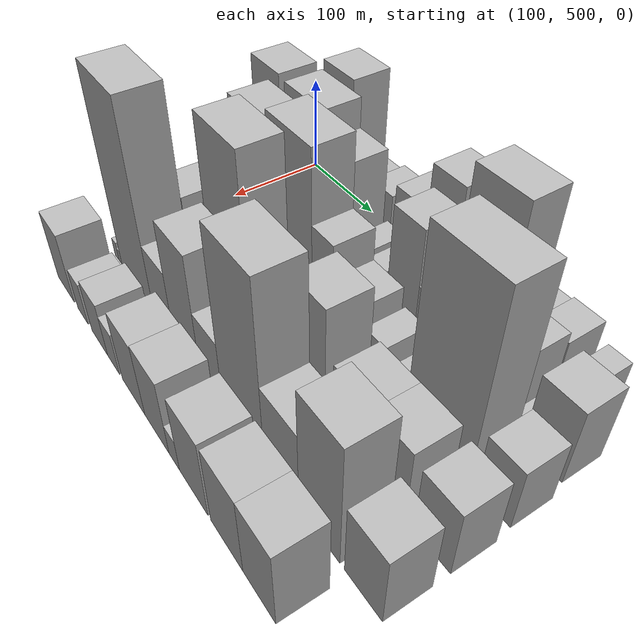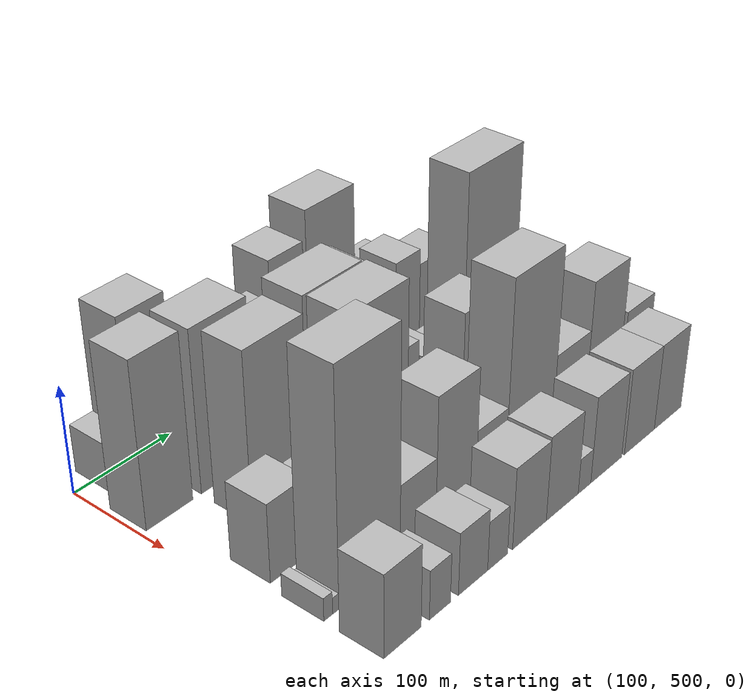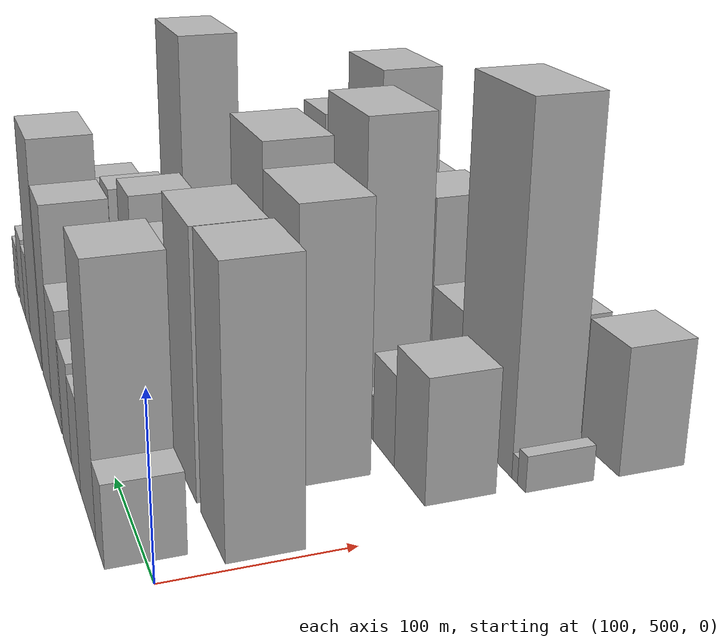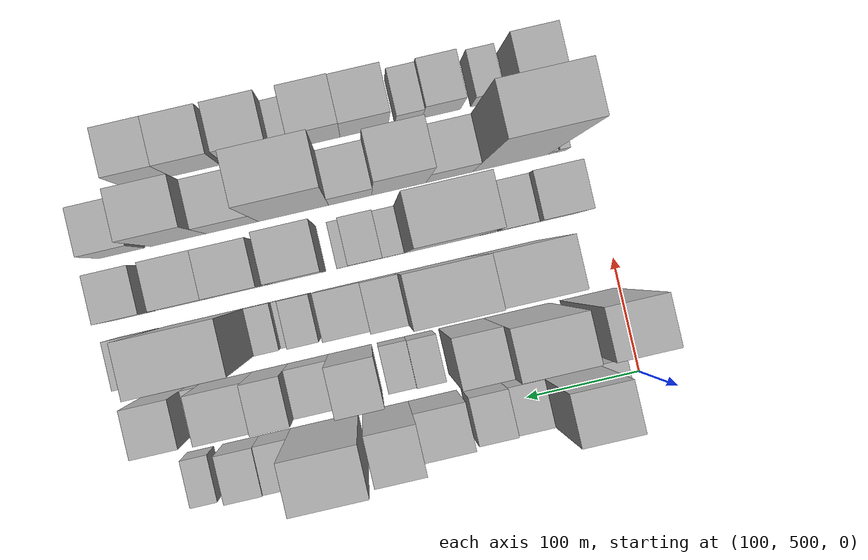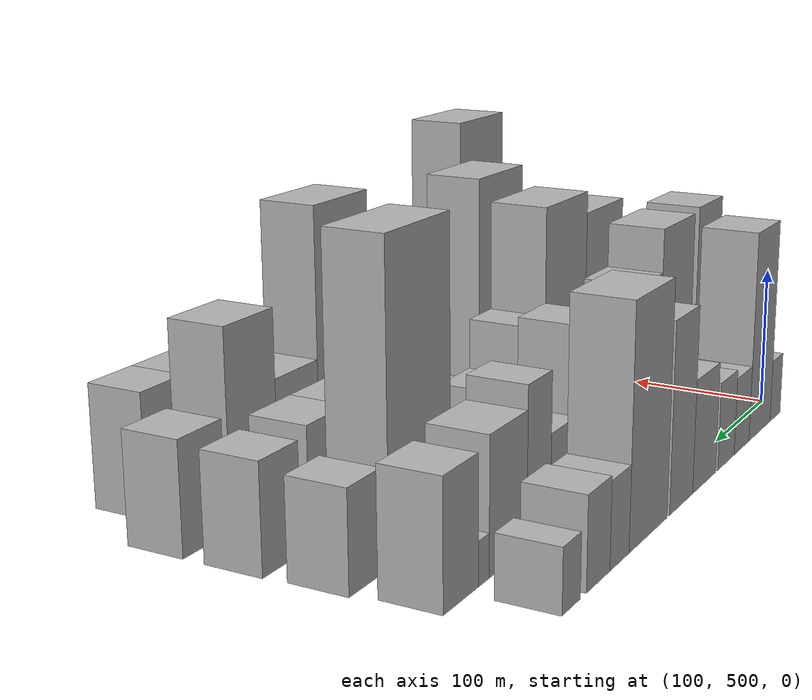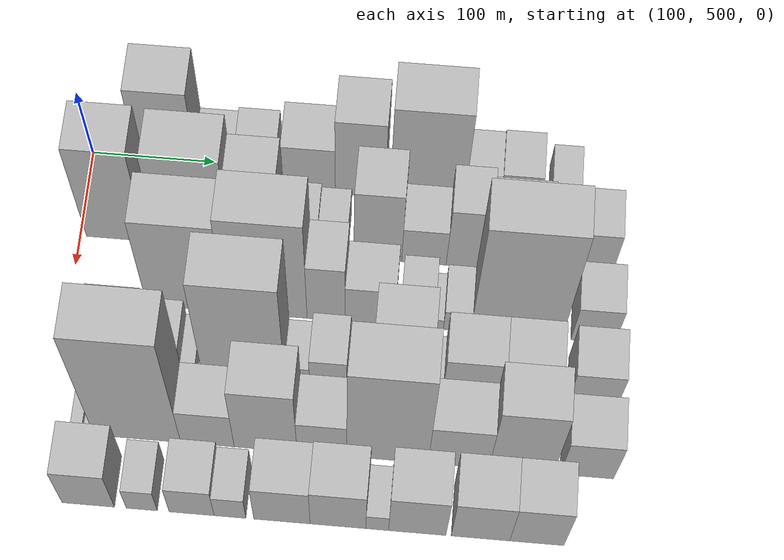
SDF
<sdf version="1.6">
 <world name="default">
  <model name="building_41">
   <static>1</static>
   <pose>100.0000 530.5672 0 0.000000 0.000000 0.000000</pose>
   <link name="link">
    <pose>0 0 22.50 0 0 0</pose>
    <collision name="collision"><geometry><box><size>40.0000 23.7376 45.0000</size></box></geometry></collision>
    <visual name="visual">
     <cast_shadows>0</cast_shadows>
     <geometry><box><size>40.0000 23.7376 45.0000</size></box></geometry>
     <material>
      <script>
       <uri>model://HANNAS_wall/materials/scripts</uri>
       <uri>model://HANNAS_wall/materials/textures</uri>
       <name>vrc/HANNAS_wall</name>
      </script>
     </material>
    </visual>
   </link>
  </model>
  <model name="building_42">
   <static>1</static>
   <pose>100.0000 566.0628 0 0.000000 0.000000 0.000000</pose>
   <link name="link">
    <pose>0 0 73.50 0 0 0</pose>
    <collision name="collision"><geometry><box><size>40.0000 47.2535 147.0000</size></box></geometry></collision>
    <visual name="visual">
     <cast_shadows>0</cast_shadows>
     <geometry><box><size>40.0000 47.2535 147.0000</size></box></geometry>
     <material>
      <script>
       <uri>model://HANNAS_wall/materials/scripts</uri>
       <uri>model://HANNAS_wall/materials/textures</uri>
       <name>vrc/HANNAS_wall</name>
      </script>
     </material>
    </visual>
   </link>
  </model>
  <model name="building_43">
   <static>1</static>
   <pose>100.0000 605.2455 0 0.000000 0.000000 0.000000</pose>
   <link name="link">
    <pose>0 0 27.00 0 0 0</pose>
    <collision name="collision"><geometry><box><size>40.0000 31.1120 54.0000</size></box></geometry></collision>
    <visual name="visual">
     <cast_shadows>0</cast_shadows>
     <geometry><box><size>40.0000 31.1120 54.0000</size></box></geometry>
     <material>
      <script>
       <uri>model://HANNAS_wall/materials/scripts</uri>
       <uri>model://HANNAS_wall/materials/textures</uri>
       <name>vrc/HANNAS_wall</name>
      </script>
     </material>
    </visual>
   </link>
  </model>
  <model name="building_44">
   <static>1</static>
   <pose>100.0000 637.2540 0 0.000000 0.000000 0.000000</pose>
   <link name="link">
    <pose>0 0 30.00 0 0 0</pose>
    <collision name="collision"><geometry><box><size>40.0000 32.9049 60.0000</size></box></geometry></collision>
    <visual name="visual">
     <cast_shadows>0</cast_shadows>
     <geometry><box><size>40.0000 32.9049 60.0000</size></box></geometry>
     <material>
      <script>
       <uri>model://HANNAS_wall/materials/scripts</uri>
       <uri>model://HANNAS_wall/materials/textures</uri>
       <name>vrc/HANNAS_wall</name>
      </script>
     </material>
    </visual>
   </link>
  </model>
  <model name="building_45">
   <static>1</static>
   <pose>100.0000 679.1042 0 0.000000 0.000000 0.000000</pose>
   <link name="link">
    <pose>0 0 37.50 0 0 0</pose>
    <collision name="collision"><geometry><box><size>40.0000 42.7956 75.0000</size></box></geometry></collision>
    <visual name="visual">
     <cast_shadows>0</cast_shadows>
     <geometry><box><size>40.0000 42.7956 75.0000</size></box></geometry>
     <material>
      <script>
       <uri>model://HANNAS_wall/materials/scripts</uri>
       <uri>model://HANNAS_wall/materials/textures</uri>
       <name>vrc/HANNAS_wall</name>
      </script>
     </material>
    </visual>
   </link>
  </model>
  <model name="building_46">
   <static>1</static>
   <pose>100.0000 720.5906 0 0.000000 0.000000 0.000000</pose>
   <link name="link">
    <pose>0 0 61.50 0 0 0</pose>
    <collision name="collision"><geometry><box><size>40.0000 40.1771 123.0000</size></box></geometry></collision>
    <visual name="visual">
     <cast_shadows>0</cast_shadows>
     <geometry><box><size>40.0000 40.1771 123.0000</size></box></geometry>
     <material>
      <script>
       <uri>model://HANNAS_wall/materials/scripts</uri>
       <uri>model://HANNAS_wall/materials/textures</uri>
       <name>vrc/HANNAS_wall</name>
      </script>
     </material>
    </visual>
   </link>
  </model>
  <model name="building_47">
   <static>1</static>
   <pose>100.0000 774.5838 0 0.000000 0.000000 0.000000</pose>
   <link name="link">
    <pose>0 0 75.00 0 0 0</pose>
    <collision name="collision"><geometry><box><size>40.0000 59.8094 150.0000</size></box></geometry></collision>
    <visual name="visual">
     <cast_shadows>0</cast_shadows>
     <geometry><box><size>40.0000 59.8094 150.0000</size></box></geometry>
     <material>
      <script>
       <uri>model://HANNAS_wall/materials/scripts</uri>
       <uri>model://HANNAS_wall/materials/textures</uri>
       <name>vrc/HANNAS_wall</name>
      </script>
     </material>
    </visual>
   </link>
  </model>
  <model name="building_48">
   <static>1</static>
   <pose>100.0000 818.4534 0 0.000000 0.000000 0.000000</pose>
   <link name="link">
    <pose>0 0 27.00 0 0 0</pose>
    <collision name="collision"><geometry><box><size>40.0000 27.9298 54.0000</size></box></geometry></collision>
    <visual name="visual">
     <cast_shadows>0</cast_shadows>
     <geometry><box><size>40.0000 27.9298 54.0000</size></box></geometry>
     <material>
      <script>
       <uri>model://HANNAS_wall/materials/scripts</uri>
       <uri>model://HANNAS_wall/materials/textures</uri>
       <name>vrc/HANNAS_wall</name>
      </script>
     </material>
    </visual>
   </link>
  </model>
  <model name="building_49">
   <static>1</static>
   <pose>100.0000 848.4009 0 0.000000 0.000000 0.000000</pose>
   <link name="link">
    <pose>0 0 28.50 0 0 0</pose>
    <collision name="collision"><geometry><box><size>40.0000 31.9652 57.0000</size></box></geometry></collision>
    <visual name="visual">
     <cast_shadows>0</cast_shadows>
     <geometry><box><size>40.0000 31.9652 57.0000</size></box></geometry>
     <material>
      <script>
       <uri>model://HANNAS_wall/materials/scripts</uri>
       <uri>model://HANNAS_wall/materials/textures</uri>
       <name>vrc/HANNAS_wall</name>
      </script>
     </material>
    </visual>
   </link>
  </model>
  <model name="building_50">
   <static>1</static>
   <pose>100.0000 883.9743 0 0.000000 0.000000 0.000000</pose>
   <link name="link">
    <pose>0 0 19.50 0 0 0</pose>
    <collision name="collision"><geometry><box><size>40.0000 23.1816 39.0000</size></box></geometry></collision>
    <visual name="visual">
     <cast_shadows>0</cast_shadows>
     <geometry><box><size>40.0000 23.1816 39.0000</size></box></geometry>
     <material>
      <script>
       <uri>model://HANNAS_wall/materials/scripts</uri>
       <uri>model://HANNAS_wall/materials/textures</uri>
       <name>vrc/HANNAS_wall</name>
      </script>
     </material>
    </visual>
   </link>
  </model>
  <model name="building_97">
   <static>1</static>
   <pose>155.0000 529.3506 0 0.000000 0.000000 0.000000</pose>
   <link name="link">
    <pose>0 0 76.50 0 0 0</pose>
    <collision name="collision"><geometry><box><size>40.0000 47.8766 153.0000</size></box></geometry></collision>
    <visual name="visual">
     <cast_shadows>0</cast_shadows>
     <geometry><box><size>40.0000 47.8766 153.0000</size></box></geometry>
     <material>
      <script>
       <uri>model://HANNAS_wall/materials/scripts</uri>
       <uri>model://HANNAS_wall/materials/textures</uri>
       <name>vrc/HANNAS_wall</name>
      </script>
     </material>
    </visual>
   </link>
  </model>
  <model name="building_98">
   <static>1</static>
   <pose>155.0000 591.6635 0 0.000000 0.000000 0.000000</pose>
   <link name="link">
    <pose>0 0 75.00 0 0 0</pose>
    <collision name="collision"><geometry><box><size>40.0000 58.7492 150.0000</size></box></geometry></collision>
    <visual name="visual">
     <cast_shadows>0</cast_shadows>
     <geometry><box><size>40.0000 58.7492 150.0000</size></box></geometry>
     <material>
      <script>
       <uri>model://HANNAS_wall/materials/scripts</uri>
       <uri>model://HANNAS_wall/materials/textures</uri>
       <name>vrc/HANNAS_wall</name>
      </script>
     </material>
    </visual>
   </link>
  </model>
  <model name="building_99">
   <static>1</static>
   <pose>155.0000 640.9338 0 0.000000 0.000000 0.000000</pose>
   <link name="link">
    <pose>0 0 60.00 0 0 0</pose>
    <collision name="collision"><geometry><box><size>40.0000 39.7915 120.0000</size></box></geometry></collision>
    <visual name="visual">
     <cast_shadows>0</cast_shadows>
     <geometry><box><size>40.0000 39.7915 120.0000</size></box></geometry>
     <material>
      <script>
       <uri>model://HANNAS_wall/materials/scripts</uri>
       <uri>model://HANNAS_wall/materials/textures</uri>
       <name>vrc/HANNAS_wall</name>
      </script>
     </material>
    </visual>
   </link>
  </model>
  <model name="building_100">
   <static>1</static>
   <pose>155.0000 679.1481 0 0.000000 0.000000 0.000000</pose>
   <link name="link">
    <pose>0 0 24.00 0 0 0</pose>
    <collision name="collision"><geometry><box><size>40.0000 24.6369 48.0000</size></box></geometry></collision>
    <visual name="visual">
     <cast_shadows>0</cast_shadows>
     <geometry><box><size>40.0000 24.6369 48.0000</size></box></geometry>
     <material>
      <script>
       <uri>model://HANNAS_wall/materials/scripts</uri>
       <uri>model://HANNAS_wall/materials/textures</uri>
       <name>vrc/HANNAS_wall</name>
      </script>
     </material>
    </visual>
   </link>
  </model>
  <model name="building_101">
   <static>1</static>
   <pose>155.0000 703.2707 0 0.000000 0.000000 0.000000</pose>
   <link name="link">
    <pose>0 0 21.00 0 0 0</pose>
    <collision name="collision"><geometry><box><size>40.0000 23.6083 42.0000</size></box></geometry></collision>
    <visual name="visual">
     <cast_shadows>0</cast_shadows>
     <geometry><box><size>40.0000 23.6083 42.0000</size></box></geometry>
     <material>
      <script>
       <uri>model://HANNAS_wall/materials/scripts</uri>
       <uri>model://HANNAS_wall/materials/textures</uri>
       <name>vrc/HANNAS_wall</name>
      </script>
     </material>
    </visual>
   </link>
  </model>
  <model name="building_102">
   <static>1</static>
   <pose>155.0000 739.1633 0 0.000000 0.000000 0.000000</pose>
   <link name="link">
    <pose>0 0 58.50 0 0 0</pose>
    <collision name="collision"><geometry><box><size>40.0000 38.1768 117.0000</size></box></geometry></collision>
    <visual name="visual">
     <cast_shadows>0</cast_shadows>
     <geometry><box><size>40.0000 38.1768 117.0000</size></box></geometry>
     <material>
      <script>
       <uri>model://HANNAS_wall/materials/scripts</uri>
       <uri>model://HANNAS_wall/materials/textures</uri>
       <name>vrc/HANNAS_wall</name>
      </script>
     </material>
    </visual>
   </link>
  </model>
  <model name="building_103">
   <static>1</static>
   <pose>155.0000 775.9968 0 0.000000 0.000000 0.000000</pose>
   <link name="link">
    <pose>0 0 30.00 0 0 0</pose>
    <collision name="collision"><geometry><box><size>40.0000 35.4901 60.0000</size></box></geometry></collision>
    <visual name="visual">
     <cast_shadows>0</cast_shadows>
     <geometry><box><size>40.0000 35.4901 60.0000</size></box></geometry>
     <material>
      <script>
       <uri>model://HANNAS_wall/materials/scripts</uri>
       <uri>model://HANNAS_wall/materials/textures</uri>
       <name>vrc/HANNAS_wall</name>
      </script>
     </material>
    </visual>
   </link>
  </model>
  <model name="building_104">
   <static>1</static>
   <pose>155.0000 809.5258 0 0.000000 0.000000 0.000000</pose>
   <link name="link">
    <pose>0 0 49.50 0 0 0</pose>
    <collision name="collision"><geometry><box><size>40.0000 31.5680 99.0000</size></box></geometry></collision>
    <visual name="visual">
     <cast_shadows>0</cast_shadows>
     <geometry><box><size>40.0000 31.5680 99.0000</size></box></geometry>
     <material>
      <script>
       <uri>model://HANNAS_wall/materials/scripts</uri>
       <uri>model://HANNAS_wall/materials/textures</uri>
       <name>vrc/HANNAS_wall</name>
      </script>
     </material>
    </visual>
   </link>
  </model>
  <model name="building_105">
   <static>1</static>
   <pose>155.0000 848.7989 0 0.000000 0.000000 0.000000</pose>
   <link name="link">
    <pose>0 0 42.00 0 0 0</pose>
    <collision name="collision"><geometry><box><size>40.0000 46.9780 84.0000</size></box></geometry></collision>
    <visual name="visual">
     <cast_shadows>0</cast_shadows>
     <geometry><box><size>40.0000 46.9780 84.0000</size></box></geometry>
     <material>
      <script>
       <uri>model://HANNAS_wall/materials/scripts</uri>
       <uri>model://HANNAS_wall/materials/textures</uri>
       <name>vrc/HANNAS_wall</name>
      </script>
     </material>
    </visual>
   </link>
  </model>
  <model name="building_106">
   <static>1</static>
   <pose>155.0000 878.7879 0 0.000000 0.000000 0.000000</pose>
   <link name="link">
    <pose>0 0 13.50 0 0 0</pose>
    <collision name="collision"><geometry><box><size>40.0000 13.0000 27.0000</size></box></geometry></collision>
    <visual name="visual">
     <cast_shadows>0</cast_shadows>
     <geometry><box><size>40.0000 13.0000 27.0000</size></box></geometry>
     <material>
      <script>
       <uri>model://HANNAS_wall/materials/scripts</uri>
       <uri>model://HANNAS_wall/materials/textures</uri>
       <name>vrc/HANNAS_wall</name>
      </script>
     </material>
    </visual>
   </link>
  </model>
  <model name="building_107">
   <static>1</static>
   <pose>155.0000 904.9095 0 0.000000 0.000000 0.000000</pose>
   <link name="link">
    <pose>0 0 39.00 0 0 0</pose>
    <collision name="collision"><geometry><box><size>40.0000 39.2432 78.0000</size></box></geometry></collision>
    <visual name="visual">
     <cast_shadows>0</cast_shadows>
     <geometry><box><size>40.0000 39.2432 78.0000</size></box></geometry>
     <material>
      <script>
       <uri>model://HANNAS_wall/materials/scripts</uri>
       <uri>model://HANNAS_wall/materials/textures</uri>
       <name>vrc/HANNAS_wall</name>
      </script>
     </material>
    </visual>
   </link>
  </model>
  <model name="building_147">
   <static>1</static>
   <pose>210.0000 592.3599 0 0.000000 0.000000 0.000000</pose>
   <link name="link">
    <pose>0 0 78.00 0 0 0</pose>
    <collision name="collision"><geometry><box><size>40.0000 62.0711 156.0000</size></box></geometry></collision>
    <visual name="visual">
     <cast_shadows>0</cast_shadows>
     <geometry><box><size>40.0000 62.0711 156.0000</size></box></geometry>
     <material>
      <script>
       <uri>model://HANNAS_wall/materials/scripts</uri>
       <uri>model://HANNAS_wall/materials/textures</uri>
       <name>vrc/HANNAS_wall</name>
      </script>
     </material>
    </visual>
   </link>
  </model>
  <model name="building_148">
   <static>1</static>
   <pose>210.0000 655.7113 0 0.000000 0.000000 0.000000</pose>
   <link name="link">
    <pose>0 0 85.50 0 0 0</pose>
    <collision name="collision"><geometry><box><size>40.0000 64.6317 171.0000</size></box></geometry></collision>
    <visual name="visual">
     <cast_shadows>0</cast_shadows>
     <geometry><box><size>40.0000 64.6317 171.0000</size></box></geometry>
     <material>
      <script>
       <uri>model://HANNAS_wall/materials/scripts</uri>
       <uri>model://HANNAS_wall/materials/textures</uri>
       <name>vrc/HANNAS_wall</name>
      </script>
     </material>
    </visual>
   </link>
  </model>
  <model name="building_149">
   <static>1</static>
   <pose>210.0000 702.9788 0 0.000000 0.000000 0.000000</pose>
   <link name="link">
    <pose>0 0 49.50 0 0 0</pose>
    <collision name="collision"><geometry><box><size>40.0000 29.9034 99.0000</size></box></geometry></collision>
    <visual name="visual">
     <cast_shadows>0</cast_shadows>
     <geometry><box><size>40.0000 29.9034 99.0000</size></box></geometry>
     <material>
      <script>
       <uri>model://HANNAS_wall/materials/scripts</uri>
       <uri>model://HANNAS_wall/materials/textures</uri>
       <name>vrc/HANNAS_wall</name>
      </script>
     </material>
    </visual>
   </link>
  </model>
  <model name="building_150">
   <static>1</static>
   <pose>210.0000 737.4481 0 0.000000 0.000000 0.000000</pose>
   <link name="link">
    <pose>0 0 33.00 0 0 0</pose>
    <collision name="collision"><geometry><box><size>40.0000 39.0352 66.0000</size></box></geometry></collision>
    <visual name="visual">
     <cast_shadows>0</cast_shadows>
     <geometry><box><size>40.0000 39.0352 66.0000</size></box></geometry>
     <material>
      <script>
       <uri>model://HANNAS_wall/materials/scripts</uri>
       <uri>model://HANNAS_wall/materials/textures</uri>
       <name>vrc/HANNAS_wall</name>
      </script>
     </material>
    </visual>
   </link>
  </model>
  <model name="building_151">
   <static>1</static>
   <pose>210.0000 774.2382 0 0.000000 0.000000 0.000000</pose>
   <link name="link">
    <pose>0 0 24.00 0 0 0</pose>
    <collision name="collision"><geometry><box><size>40.0000 26.5449 48.0000</size></box></geometry></collision>
    <visual name="visual">
     <cast_shadows>0</cast_shadows>
     <geometry><box><size>40.0000 26.5449 48.0000</size></box></geometry>
     <material>
      <script>
       <uri>model://HANNAS_wall/materials/scripts</uri>
       <uri>model://HANNAS_wall/materials/textures</uri>
       <name>vrc/HANNAS_wall</name>
      </script>
     </material>
    </visual>
   </link>
  </model>
  <model name="building_152">
   <static>1</static>
   <pose>210.0000 791.3704 0 0.000000 0.000000 0.000000</pose>
   <link name="link">
    <pose>0 0 9.00 0 0 0</pose>
    <collision name="collision"><geometry><box><size>40.0000 7.7194 18.0000</size></box></geometry></collision>
    <visual name="visual">
     <cast_shadows>0</cast_shadows>
     <geometry><box><size>40.0000 7.7194 18.0000</size></box></geometry>
     <material>
      <script>
       <uri>model://HANNAS_wall/materials/scripts</uri>
       <uri>model://HANNAS_wall/materials/textures</uri>
       <name>vrc/HANNAS_wall</name>
      </script>
     </material>
    </visual>
   </link>
  </model>
  <model name="building_153">
   <static>1</static>
   <pose>210.0000 805.9480 0 0.000000 0.000000 0.000000</pose>
   <link name="link">
    <pose>0 0 18.00 0 0 0</pose>
    <collision name="collision"><geometry><box><size>40.0000 21.4358 36.0000</size></box></geometry></collision>
    <visual name="visual">
     <cast_shadows>0</cast_shadows>
     <geometry><box><size>40.0000 21.4358 36.0000</size></box></geometry>
     <material>
      <script>
       <uri>model://HANNAS_wall/materials/scripts</uri>
       <uri>model://HANNAS_wall/materials/textures</uri>
       <name>vrc/HANNAS_wall</name>
      </script>
     </material>
    </visual>
   </link>
  </model>
  <model name="building_154">
   <static>1</static>
   <pose>210.0000 852.4166 0 0.000000 0.000000 0.000000</pose>
   <link name="link">
    <pose>0 0 96.00 0 0 0</pose>
    <collision name="collision"><geometry><box><size>40.0000 71.5013 192.0000</size></box></geometry></collision>
    <visual name="visual">
     <cast_shadows>0</cast_shadows>
     <geometry><box><size>40.0000 71.5013 192.0000</size></box></geometry>
     <material>
      <script>
       <uri>model://HANNAS_wall/materials/scripts</uri>
       <uri>model://HANNAS_wall/materials/textures</uri>
       <name>vrc/HANNAS_wall</name>
      </script>
     </material>
    </visual>
   </link>
  </model>
  <model name="building_155">
   <static>1</static>
   <pose>210.0000 912.3884 0 0.000000 0.000000 0.000000</pose>
   <link name="link">
    <pose>0 0 31.50 0 0 0</pose>
    <collision name="collision"><geometry><box><size>40.0000 34.4425 63.0000</size></box></geometry></collision>
    <visual name="visual">
     <cast_shadows>0</cast_shadows>
     <geometry><box><size>40.0000 34.4425 63.0000</size></box></geometry>
     <material>
      <script>
       <uri>model://HANNAS_wall/materials/scripts</uri>
       <uri>model://HANNAS_wall/materials/textures</uri>
       <name>vrc/HANNAS_wall</name>
      </script>
     </material>
    </visual>
   </link>
  </model>
  <model name="building_198">
   <static>1</static>
   <pose>265.0000 543.9804 0 0.000000 0.000000 0.000000</pose>
   <link name="link">
    <pose>0 0 36.00 0 0 0</pose>
    <collision name="collision"><geometry><box><size>40.0000 41.3628 72.0000</size></box></geometry></collision>
    <visual name="visual">
     <cast_shadows>0</cast_shadows>
     <geometry><box><size>40.0000 41.3628 72.0000</size></box></geometry>
     <material>
      <script>
       <uri>model://HANNAS_wall/materials/scripts</uri>
       <uri>model://HANNAS_wall/materials/textures</uri>
       <name>vrc/HANNAS_wall</name>
      </script>
     </material>
    </visual>
   </link>
  </model>
  <model name="building_199">
   <static>1</static>
   <pose>265.0000 580.4687 0 0.000000 0.000000 0.000000</pose>
   <link name="link">
    <pose>0 0 27.00 0 0 0</pose>
    <collision name="collision"><geometry><box><size>40.0000 31.6139 54.0000</size></box></geometry></collision>
    <visual name="visual">
     <cast_shadows>0</cast_shadows>
     <geometry><box><size>40.0000 31.6139 54.0000</size></box></geometry>
     <material>
      <script>
       <uri>model://HANNAS_wall/materials/scripts</uri>
       <uri>model://HANNAS_wall/materials/textures</uri>
       <name>vrc/HANNAS_wall</name>
      </script>
     </material>
    </visual>
   </link>
  </model>
  <model name="building_200">
   <static>1</static>
   <pose>265.0000 602.1187 0 0.000000 0.000000 0.000000</pose>
   <link name="link">
    <pose>0 0 13.50 0 0 0</pose>
    <collision name="collision"><geometry><box><size>40.0000 11.6861 27.0000</size></box></geometry></collision>
    <visual name="visual">
     <cast_shadows>0</cast_shadows>
     <geometry><box><size>40.0000 11.6861 27.0000</size></box></geometry>
     <material>
      <script>
       <uri>model://HANNAS_wall/materials/scripts</uri>
       <uri>model://HANNAS_wall/materials/textures</uri>
       <name>vrc/HANNAS_wall</name>
      </script>
     </material>
    </visual>
   </link>
  </model>
  <model name="building_201">
   <static>1</static>
   <pose>265.0000 644.0801 0 0.000000 0.000000 0.000000</pose>
   <link name="link">
    <pose>0 0 91.50 0 0 0</pose>
    <collision name="collision"><geometry><box><size>40.0000 64.2366 183.0000</size></box></geometry></collision>
    <visual name="visual">
     <cast_shadows>0</cast_shadows>
     <geometry><box><size>40.0000 64.2366 183.0000</size></box></geometry>
     <material>
      <script>
       <uri>model://HANNAS_wall/materials/scripts</uri>
       <uri>model://HANNAS_wall/materials/textures</uri>
       <name>vrc/HANNAS_wall</name>
      </script>
     </material>
    </visual>
   </link>
  </model>
  <model name="building_202">
   <static>1</static>
   <pose>265.0000 685.7060 0 0.000000 0.000000 0.000000</pose>
   <link name="link">
    <pose>0 0 16.50 0 0 0</pose>
    <collision name="collision"><geometry><box><size>40.0000 19.0152 33.0000</size></box></geometry></collision>
    <visual name="visual">
     <cast_shadows>0</cast_shadows>
     <geometry><box><size>40.0000 19.0152 33.0000</size></box></geometry>
     <material>
      <script>
       <uri>model://HANNAS_wall/materials/scripts</uri>
       <uri>model://HANNAS_wall/materials/textures</uri>
       <name>vrc/HANNAS_wall</name>
      </script>
     </material>
    </visual>
   </link>
  </model>
  <model name="building_203">
   <static>1</static>
   <pose>265.0000 709.6902 0 0.000000 0.000000 0.000000</pose>
   <link name="link">
    <pose>0 0 25.50 0 0 0</pose>
    <collision name="collision"><geometry><box><size>40.0000 28.9530 51.0000</size></box></geometry></collision>
    <visual name="visual">
     <cast_shadows>0</cast_shadows>
     <geometry><box><size>40.0000 28.9530 51.0000</size></box></geometry>
     <material>
      <script>
       <uri>model://HANNAS_wall/materials/scripts</uri>
       <uri>model://HANNAS_wall/materials/textures</uri>
       <name>vrc/HANNAS_wall</name>
      </script>
     </material>
    </visual>
   </link>
  </model>
  <model name="building_204">
   <static>1</static>
   <pose>265.0000 729.0723 0 0.000000 0.000000 0.000000</pose>
   <link name="link">
    <pose>0 0 10.50 0 0 0</pose>
    <collision name="collision"><geometry><box><size>40.0000 9.8111 21.0000</size></box></geometry></collision>
    <visual name="visual">
     <cast_shadows>0</cast_shadows>
     <geometry><box><size>40.0000 9.8111 21.0000</size></box></geometry>
     <material>
      <script>
       <uri>model://HANNAS_wall/materials/scripts</uri>
       <uri>model://HANNAS_wall/materials/textures</uri>
       <name>vrc/HANNAS_wall</name>
      </script>
     </material>
    </visual>
   </link>
  </model>
  <model name="building_205">
   <static>1</static>
   <pose>265.0000 766.0574 0 0.000000 0.000000 0.000000</pose>
   <link name="link">
    <pose>0 0 60.00 0 0 0</pose>
    <collision name="collision"><geometry><box><size>40.0000 44.1591 120.0000</size></box></geometry></collision>
    <visual name="visual">
     <cast_shadows>0</cast_shadows>
     <geometry><box><size>40.0000 44.1591 120.0000</size></box></geometry>
     <material>
      <script>
       <uri>model://HANNAS_wall/materials/scripts</uri>
       <uri>model://HANNAS_wall/materials/textures</uri>
       <name>vrc/HANNAS_wall</name>
      </script>
     </material>
    </visual>
   </link>
  </model>
  <model name="building_206">
   <static>1</static>
   <pose>265.0000 793.1432 0 0.000000 0.000000 0.000000</pose>
   <link name="link">
    <pose>0 0 12.00 0 0 0</pose>
    <collision name="collision"><geometry><box><size>40.0000 10.0125 24.0000</size></box></geometry></collision>
    <visual name="visual">
     <cast_shadows>0</cast_shadows>
     <geometry><box><size>40.0000 10.0125 24.0000</size></box></geometry>
     <material>
      <script>
       <uri>model://HANNAS_wall/materials/scripts</uri>
       <uri>model://HANNAS_wall/materials/textures</uri>
       <name>vrc/HANNAS_wall</name>
      </script>
     </material>
    </visual>
   </link>
  </model>
  <model name="building_207">
   <static>1</static>
   <pose>265.0000 820.5416 0 0.000000 0.000000 0.000000</pose>
   <link name="link">
    <pose>0 0 37.50 0 0 0</pose>
    <collision name="collision"><geometry><box><size>40.0000 44.7844 75.0000</size></box></geometry></collision>
    <visual name="visual">
     <cast_shadows>0</cast_shadows>
     <geometry><box><size>40.0000 44.7844 75.0000</size></box></geometry>
     <material>
      <script>
       <uri>model://HANNAS_wall/materials/scripts</uri>
       <uri>model://HANNAS_wall/materials/textures</uri>
       <name>vrc/HANNAS_wall</name>
      </script>
     </material>
    </visual>
   </link>
  </model>
  <model name="building_208">
   <static>1</static>
   <pose>265.0000 864.0913 0 0.000000 0.000000 0.000000</pose>
   <link name="link">
    <pose>0 0 37.50 0 0 0</pose>
    <collision name="collision"><geometry><box><size>40.0000 42.3149 75.0000</size></box></geometry></collision>
    <visual name="visual">
     <cast_shadows>0</cast_shadows>
     <geometry><box><size>40.0000 42.3149 75.0000</size></box></geometry>
     <material>
      <script>
       <uri>model://HANNAS_wall/materials/scripts</uri>
       <uri>model://HANNAS_wall/materials/textures</uri>
       <name>vrc/HANNAS_wall</name>
      </script>
     </material>
    </visual>
   </link>
  </model>
  <model name="building_209">
   <static>1</static>
   <pose>265.0000 913.0253 0 0.000000 0.000000 0.000000</pose>
   <link name="link">
    <pose>0 0 34.50 0 0 0</pose>
    <collision name="collision"><geometry><box><size>40.0000 37.5530 69.0000</size></box></geometry></collision>
    <visual name="visual">
     <cast_shadows>0</cast_shadows>
     <geometry><box><size>40.0000 37.5530 69.0000</size></box></geometry>
     <material>
      <script>
       <uri>model://HANNAS_wall/materials/scripts</uri>
       <uri>model://HANNAS_wall/materials/textures</uri>
       <name>vrc/HANNAS_wall</name>
      </script>
     </material>
    </visual>
   </link>
  </model>
  <model name="building_253">
   <static>1</static>
   <pose>320.0000 523.6599 0 0.000000 0.000000 0.000000</pose>
   <link name="link">
    <pose>0 0 10.50 0 0 0</pose>
    <collision name="collision"><geometry><box><size>40.0000 9.1681 21.0000</size></box></geometry></collision>
    <visual name="visual">
     <cast_shadows>0</cast_shadows>
     <geometry><box><size>40.0000 9.1681 21.0000</size></box></geometry>
     <material>
      <script>
       <uri>model://HANNAS_wall/materials/scripts</uri>
       <uri>model://HANNAS_wall/materials/textures</uri>
       <name>vrc/HANNAS_wall</name>
      </script>
     </material>
    </visual>
   </link>
  </model>
  <model name="building_254">
   <static>1</static>
   <pose>320.0000 531.5204 0 0.000000 0.000000 0.000000</pose>
   <link name="link">
    <pose>0 0 7.50 0 0 0</pose>
    <collision name="collision"><geometry><box><size>40.0000 6.5529 15.0000</size></box></geometry></collision>
    <visual name="visual">
     <cast_shadows>0</cast_shadows>
     <geometry><box><size>40.0000 6.5529 15.0000</size></box></geometry>
     <material>
      <script>
       <uri>model://HANNAS_wall/materials/scripts</uri>
       <uri>model://HANNAS_wall/materials/textures</uri>
       <name>vrc/HANNAS_wall</name>
      </script>
     </material>
    </visual>
   </link>
  </model>
  <model name="building_255">
   <static>1</static>
   <pose>320.0000 568.2200 0 0.000000 0.000000 0.000000</pose>
   <link name="link">
    <pose>0 0 103.50 0 0 0</pose>
    <collision name="collision"><geometry><box><size>40.0000 66.8465 207.0000</size></box></geometry></collision>
    <visual name="visual">
     <cast_shadows>0</cast_shadows>
     <geometry><box><size>40.0000 66.8465 207.0000</size></box></geometry>
     <material>
      <script>
       <uri>model://HANNAS_wall/materials/scripts</uri>
       <uri>model://HANNAS_wall/materials/textures</uri>
       <name>vrc/HANNAS_wall</name>
      </script>
     </material>
    </visual>
   </link>
  </model>
  <model name="building_256">
   <static>1</static>
   <pose>320.0000 622.2170 0 0.000000 0.000000 0.000000</pose>
   <link name="link">
    <pose>0 0 34.50 0 0 0</pose>
    <collision name="collision"><geometry><box><size>40.0000 41.1475 69.0000</size></box></geometry></collision>
    <visual name="visual">
     <cast_shadows>0</cast_shadows>
     <geometry><box><size>40.0000 41.1475 69.0000</size></box></geometry>
     <material>
      <script>
       <uri>model://HANNAS_wall/materials/scripts</uri>
       <uri>model://HANNAS_wall/materials/textures</uri>
       <name>vrc/HANNAS_wall</name>
      </script>
     </material>
    </visual>
   </link>
  </model>
  <model name="building_257">
   <static>1</static>
   <pose>320.0000 666.8337 0 0.000000 0.000000 0.000000</pose>
   <link name="link">
    <pose>0 0 61.50 0 0 0</pose>
    <collision name="collision"><geometry><box><size>40.0000 48.0858 123.0000</size></box></geometry></collision>
    <visual name="visual">
     <cast_shadows>0</cast_shadows>
     <geometry><box><size>40.0000 48.0858 123.0000</size></box></geometry>
     <material>
      <script>
       <uri>model://HANNAS_wall/materials/scripts</uri>
       <uri>model://HANNAS_wall/materials/textures</uri>
       <name>vrc/HANNAS_wall</name>
      </script>
     </material>
    </visual>
   </link>
  </model>
  <model name="building_258">
   <static>1</static>
   <pose>320.0000 709.8831 0 0.000000 0.000000 0.000000</pose>
   <link name="link">
    <pose>0 0 33.00 0 0 0</pose>
    <collision name="collision"><geometry><box><size>40.0000 38.0131 66.0000</size></box></geometry></collision>
    <visual name="visual">
     <cast_shadows>0</cast_shadows>
     <geometry><box><size>40.0000 38.0131 66.0000</size></box></geometry>
     <material>
      <script>
       <uri>model://HANNAS_wall/materials/scripts</uri>
       <uri>model://HANNAS_wall/materials/textures</uri>
       <name>vrc/HANNAS_wall</name>
      </script>
     </material>
    </visual>
   </link>
  </model>
  <model name="building_259">
   <static>1</static>
   <pose>320.0000 759.9313 0 0.000000 0.000000 0.000000</pose>
   <link name="link">
    <pose>0 0 90.00 0 0 0</pose>
    <collision name="collision"><geometry><box><size>40.0000 62.0833 180.0000</size></box></geometry></collision>
    <visual name="visual">
     <cast_shadows>0</cast_shadows>
     <geometry><box><size>40.0000 62.0833 180.0000</size></box></geometry>
     <material>
      <script>
       <uri>model://HANNAS_wall/materials/scripts</uri>
       <uri>model://HANNAS_wall/materials/textures</uri>
       <name>vrc/HANNAS_wall</name>
      </script>
     </material>
    </visual>
   </link>
  </model>
  <model name="building_260">
   <static>1</static>
   <pose>320.0000 814.1248 0 0.000000 0.000000 0.000000</pose>
   <link name="link">
    <pose>0 0 40.50 0 0 0</pose>
    <collision name="collision"><geometry><box><size>40.0000 46.3038 81.0000</size></box></geometry></collision>
    <visual name="visual">
     <cast_shadows>0</cast_shadows>
     <geometry><box><size>40.0000 46.3038 81.0000</size></box></geometry>
     <material>
      <script>
       <uri>model://HANNAS_wall/materials/scripts</uri>
       <uri>model://HANNAS_wall/materials/textures</uri>
       <name>vrc/HANNAS_wall</name>
      </script>
     </material>
    </visual>
   </link>
  </model>
  <model name="building_261">
   <static>1</static>
   <pose>320.0000 861.8116 0 0.000000 0.000000 0.000000</pose>
   <link name="link">
    <pose>0 0 63.00 0 0 0</pose>
    <collision name="collision"><geometry><box><size>40.0000 49.0698 126.0000</size></box></geometry></collision>
    <visual name="visual">
     <cast_shadows>0</cast_shadows>
     <geometry><box><size>40.0000 49.0698 126.0000</size></box></geometry>
     <material>
      <script>
       <uri>model://HANNAS_wall/materials/scripts</uri>
       <uri>model://HANNAS_wall/materials/textures</uri>
       <name>vrc/HANNAS_wall</name>
      </script>
     </material>
    </visual>
   </link>
  </model>
  <model name="building_262">
   <static>1</static>
   <pose>320.0000 911.5952 0 0.000000 0.000000 0.000000</pose>
   <link name="link">
    <pose>0 0 36.00 0 0 0</pose>
    <collision name="collision"><geometry><box><size>40.0000 40.4974 72.0000</size></box></geometry></collision>
    <visual name="visual">
     <cast_shadows>0</cast_shadows>
     <geometry><box><size>40.0000 40.4974 72.0000</size></box></geometry>
     <material>
      <script>
       <uri>model://HANNAS_wall/materials/scripts</uri>
       <uri>model://HANNAS_wall/materials/textures</uri>
       <name>vrc/HANNAS_wall</name>
      </script>
     </material>
    </visual>
   </link>
  </model>
  <model name="building_301">
   <static>1</static>
   <pose>375.0000 538.2378 0 0.000000 0.000000 0.000000</pose>
   <link name="link">
    <pose>0 0 37.50 0 0 0</pose>
    <collision name="collision"><geometry><box><size>40.0000 39.7989 75.0000</size></box></geometry></collision>
    <visual name="visual">
     <cast_shadows>0</cast_shadows>
     <geometry><box><size>40.0000 39.7989 75.0000</size></box></geometry>
     <material>
      <script>
       <uri>model://HANNAS_wall/materials/scripts</uri>
       <uri>model://HANNAS_wall/materials/textures</uri>
       <name>vrc/HANNAS_wall</name>
      </script>
     </material>
    </visual>
   </link>
  </model>
  <model name="building_302">
   <static>1</static>
   <pose>375.0000 578.8894 0 0.000000 0.000000 0.000000</pose>
   <link name="link">
    <pose>0 0 22.50 0 0 0</pose>
    <collision name="collision"><geometry><box><size>40.0000 23.5044 45.0000</size></box></geometry></collision>
    <visual name="visual">
     <cast_shadows>0</cast_shadows>
     <geometry><box><size>40.0000 23.5044 45.0000</size></box></geometry>
     <material>
      <script>
       <uri>model://HANNAS_wall/materials/scripts</uri>
       <uri>model://HANNAS_wall/materials/textures</uri>
       <name>vrc/HANNAS_wall</name>
      </script>
     </material>
    </visual>
   </link>
  </model>
  <model name="building_303">
   <static>1</static>
   <pose>375.0000 616.6672 0 0.000000 0.000000 0.000000</pose>
   <link name="link">
    <pose>0 0 28.50 0 0 0</pose>
    <collision name="collision"><geometry><box><size>40.0000 34.0511 57.0000</size></box></geometry></collision>
    <visual name="visual">
     <cast_shadows>0</cast_shadows>
     <geometry><box><size>40.0000 34.0511 57.0000</size></box></geometry>
     <material>
      <script>
       <uri>model://HANNAS_wall/materials/scripts</uri>
       <uri>model://HANNAS_wall/materials/textures</uri>
       <name>vrc/HANNAS_wall</name>
      </script>
     </material>
    </visual>
   </link>
  </model>
  <model name="building_304">
   <static>1</static>
   <pose>375.0000 645.6879 0 0.000000 0.000000 0.000000</pose>
   <link name="link">
    <pose>0 0 22.50 0 0 0</pose>
    <collision name="collision"><geometry><box><size>40.0000 23.9905 45.0000</size></box></geometry></collision>
    <visual name="visual">
     <cast_shadows>0</cast_shadows>
     <geometry><box><size>40.0000 23.9905 45.0000</size></box></geometry>
     <material>
      <script>
       <uri>model://HANNAS_wall/materials/scripts</uri>
       <uri>model://HANNAS_wall/materials/textures</uri>
       <name>vrc/HANNAS_wall</name>
      </script>
     </material>
    </visual>
   </link>
  </model>
  <model name="building_305">
   <static>1</static>
   <pose>375.0000 684.8960 0 0.000000 0.000000 0.000000</pose>
   <link name="link">
    <pose>0 0 37.50 0 0 0</pose>
    <collision name="collision"><geometry><box><size>40.0000 42.4256 75.0000</size></box></geometry></collision>
    <visual name="visual">
     <cast_shadows>0</cast_shadows>
     <geometry><box><size>40.0000 42.4256 75.0000</size></box></geometry>
     <material>
      <script>
       <uri>model://HANNAS_wall/materials/scripts</uri>
       <uri>model://HANNAS_wall/materials/textures</uri>
       <name>vrc/HANNAS_wall</name>
      </script>
     </material>
    </visual>
   </link>
  </model>
  <model name="building_306">
   <static>1</static>
   <pose>375.0000 727.0697 0 0.000000 0.000000 0.000000</pose>
   <link name="link">
    <pose>0 0 39.00 0 0 0</pose>
    <collision name="collision"><geometry><box><size>40.0000 41.9217 78.0000</size></box></geometry></collision>
    <visual name="visual">
     <cast_shadows>0</cast_shadows>
     <geometry><box><size>40.0000 41.9217 78.0000</size></box></geometry>
     <material>
      <script>
       <uri>model://HANNAS_wall/materials/scripts</uri>
       <uri>model://HANNAS_wall/materials/textures</uri>
       <name>vrc/HANNAS_wall</name>
      </script>
     </material>
    </visual>
   </link>
  </model>
  <model name="building_307">
   <static>1</static>
   <pose>375.0000 756.5690 0 0.000000 0.000000 0.000000</pose>
   <link name="link">
    <pose>0 0 16.50 0 0 0</pose>
    <collision name="collision"><geometry><box><size>40.0000 17.0770 33.0000</size></box></geometry></collision>
    <visual name="visual">
     <cast_shadows>0</cast_shadows>
     <geometry><box><size>40.0000 17.0770 33.0000</size></box></geometry>
     <material>
      <script>
       <uri>model://HANNAS_wall/materials/scripts</uri>
       <uri>model://HANNAS_wall/materials/textures</uri>
       <name>vrc/HANNAS_wall</name>
      </script>
     </material>
    </visual>
   </link>
  </model>
  <model name="building_308">
   <static>1</static>
   <pose>375.0000 786.6642 0 0.000000 0.000000 0.000000</pose>
   <link name="link">
    <pose>0 0 40.50 0 0 0</pose>
    <collision name="collision"><geometry><box><size>40.0000 43.1134 81.0000</size></box></geometry></collision>
    <visual name="visual">
     <cast_shadows>0</cast_shadows>
     <geometry><box><size>40.0000 43.1134 81.0000</size></box></geometry>
     <material>
      <script>
       <uri>model://HANNAS_wall/materials/scripts</uri>
       <uri>model://HANNAS_wall/materials/textures</uri>
       <name>vrc/HANNAS_wall</name>
      </script>
     </material>
    </visual>
   </link>
  </model>
  <model name="building_309">
   <static>1</static>
   <pose>375.0000 834.1074 0 0.000000 0.000000 0.000000</pose>
   <link name="link">
    <pose>0 0 40.50 0 0 0</pose>
    <collision name="collision"><geometry><box><size>40.0000 43.7730 81.0000</size></box></geometry></collision>
    <visual name="visual">
     <cast_shadows>0</cast_shadows>
     <geometry><box><size>40.0000 43.7730 81.0000</size></box></geometry>
     <material>
      <script>
       <uri>model://HANNAS_wall/materials/scripts</uri>
       <uri>model://HANNAS_wall/materials/textures</uri>
       <name>vrc/HANNAS_wall</name>
      </script>
     </material>
    </visual>
   </link>
  </model>
  <model name="building_310">
   <static>1</static>
   <pose>375.0000 876.2546 0 0.000000 0.000000 0.000000</pose>
   <link name="link">
    <pose>0 0 40.50 0 0 0</pose>
    <collision name="collision"><geometry><box><size>40.0000 40.5214 81.0000</size></box></geometry></collision>
    <visual name="visual">
     <cast_shadows>0</cast_shadows>
     <geometry><box><size>40.0000 40.5214 81.0000</size></box></geometry>
     <material>
      <script>
       <uri>model://HANNAS_wall/materials/scripts</uri>
       <uri>model://HANNAS_wall/materials/textures</uri>
       <name>vrc/HANNAS_wall</name>
      </script>
     </material>
    </visual>
   </link>
  </model>
 </world>
</sdf>
